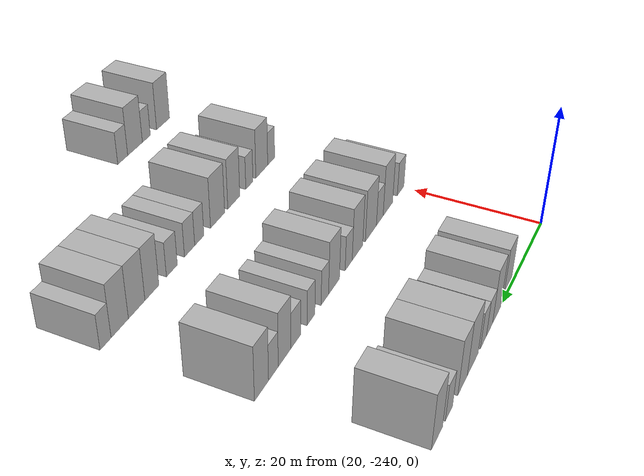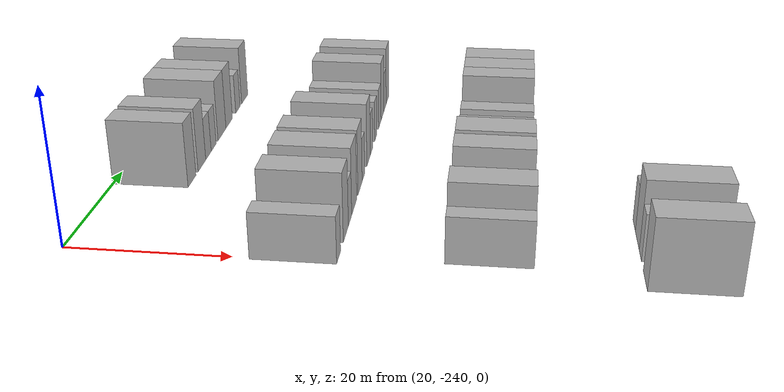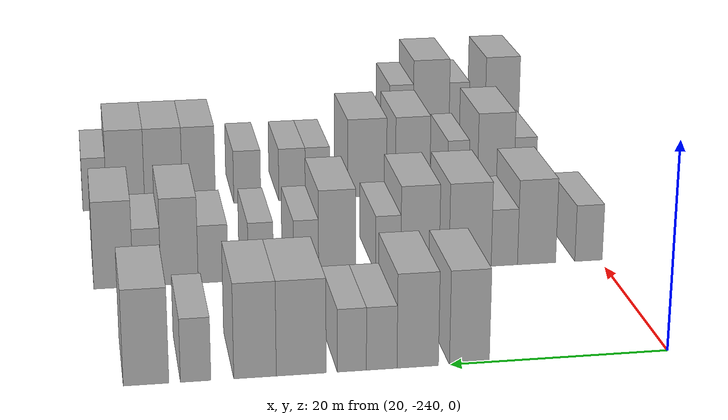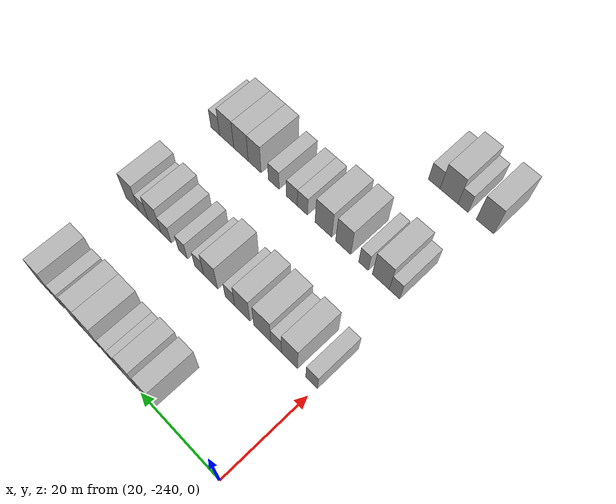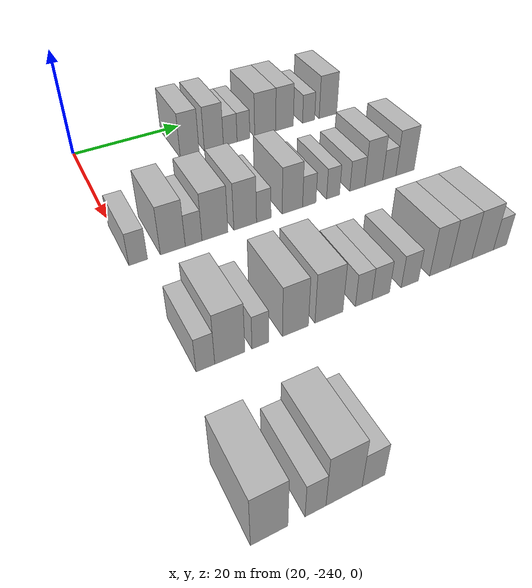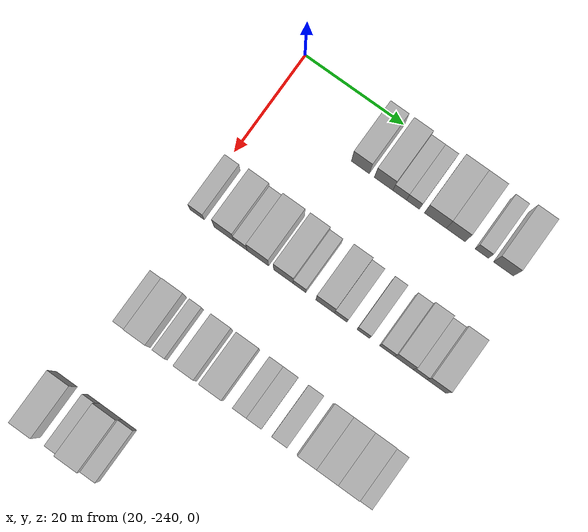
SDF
<sdf version="1.6">
 <world name="default">
  <model name="building_37">
   <static>1</static>
   <pose>25.0000 -221.7354 0 0.000000 0.000000 0.000000</pose>
   <link name="link">
    <pose>0 0 4.50 0 0 0</pose>
    <collision name="collision"><geometry><box><size>10.0000 3.6124 9.0000</size></box></geometry></collision>
    <visual name="visual">
     <cast_shadows>0</cast_shadows>
     <geometry><box><size>10.0000 3.6124 9.0000</size></box></geometry>
     <material>
      <script>
       <uri>model://HANNAS_wall/materials/scripts</uri>
       <uri>model://HANNAS_wall/materials/textures</uri>
       <name>vrc/HANNAS_wall</name>
      </script>
     </material>
    </visual>
   </link>
  </model>
  <model name="building_38">
   <static>1</static>
   <pose>25.0000 -217.0617 0 0.000000 0.000000 0.000000</pose>
   <link name="link">
    <pose>0 0 4.50 0 0 0</pose>
    <collision name="collision"><geometry><box><size>10.0000 3.7349 9.0000</size></box></geometry></collision>
    <visual name="visual">
     <cast_shadows>0</cast_shadows>
     <geometry><box><size>10.0000 3.7349 9.0000</size></box></geometry>
     <material>
      <script>
       <uri>model://HANNAS_wall/materials/scripts</uri>
       <uri>model://HANNAS_wall/materials/textures</uri>
       <name>vrc/HANNAS_wall</name>
      </script>
     </material>
    </visual>
   </link>
  </model>
  <model name="building_39">
   <static>1</static>
   <pose>25.0000 -213.8216 0 0.000000 0.000000 0.000000</pose>
   <link name="link">
    <pose>0 0 3.00 0 0 0</pose>
    <collision name="collision"><geometry><box><size>10.0000 2.7454 6.0000</size></box></geometry></collision>
    <visual name="visual">
     <cast_shadows>0</cast_shadows>
     <geometry><box><size>10.0000 2.7454 6.0000</size></box></geometry>
     <material>
      <script>
       <uri>model://HANNAS_wall/materials/scripts</uri>
       <uri>model://HANNAS_wall/materials/textures</uri>
       <name>vrc/HANNAS_wall</name>
      </script>
     </material>
    </visual>
   </link>
  </model>
  <model name="building_40">
   <static>1</static>
   <pose>25.0000 -211.1552 0 0.000000 0.000000 0.000000</pose>
   <link name="link">
    <pose>0 0 3.00 0 0 0</pose>
    <collision name="collision"><geometry><box><size>10.0000 2.5873 6.0000</size></box></geometry></collision>
    <visual name="visual">
     <cast_shadows>0</cast_shadows>
     <geometry><box><size>10.0000 2.5873 6.0000</size></box></geometry>
     <material>
      <script>
       <uri>model://HANNAS_wall/materials/scripts</uri>
       <uri>model://HANNAS_wall/materials/textures</uri>
       <name>vrc/HANNAS_wall</name>
      </script>
     </material>
    </visual>
   </link>
  </model>
  <model name="building_41">
   <static>1</static>
   <pose>25.0000 -206.6577 0 0.000000 0.000000 0.000000</pose>
   <link name="link">
    <pose>0 0 4.50 0 0 0</pose>
    <collision name="collision"><geometry><box><size>10.0000 4.4078 9.0000</size></box></geometry></collision>
    <visual name="visual">
     <cast_shadows>0</cast_shadows>
     <geometry><box><size>10.0000 4.4078 9.0000</size></box></geometry>
     <material>
      <script>
       <uri>model://HANNAS_wall/materials/scripts</uri>
       <uri>model://HANNAS_wall/materials/textures</uri>
       <name>vrc/HANNAS_wall</name>
      </script>
     </material>
    </visual>
   </link>
  </model>
  <model name="building_42">
   <static>1</static>
   <pose>25.0000 -202.5841 0 0.000000 0.000000 0.000000</pose>
   <link name="link">
    <pose>0 0 4.50 0 0 0</pose>
    <collision name="collision"><geometry><box><size>10.0000 3.7394 9.0000</size></box></geometry></collision>
    <visual name="visual">
     <cast_shadows>0</cast_shadows>
     <geometry><box><size>10.0000 3.7394 9.0000</size></box></geometry>
     <material>
      <script>
       <uri>model://HANNAS_wall/materials/scripts</uri>
       <uri>model://HANNAS_wall/materials/textures</uri>
       <name>vrc/HANNAS_wall</name>
      </script>
     </material>
    </visual>
   </link>
  </model>
  <model name="building_43">
   <static>1</static>
   <pose>25.0000 -197.3861 0 0.000000 0.000000 0.000000</pose>
   <link name="link">
    <pose>0 0 3.00 0 0 0</pose>
    <collision name="collision"><geometry><box><size>10.0000 2.6565 6.0000</size></box></geometry></collision>
    <visual name="visual">
     <cast_shadows>0</cast_shadows>
     <geometry><box><size>10.0000 2.6565 6.0000</size></box></geometry>
     <material>
      <script>
       <uri>model://HANNAS_wall/materials/scripts</uri>
       <uri>model://HANNAS_wall/materials/textures</uri>
       <name>vrc/HANNAS_wall</name>
      </script>
     </material>
    </visual>
   </link>
  </model>
  <model name="building_44">
   <static>1</static>
   <pose>25.0000 -193.0809 0 0.000000 0.000000 0.000000</pose>
   <link name="link">
    <pose>0 0 4.50 0 0 0</pose>
    <collision name="collision"><geometry><box><size>10.0000 3.9538 9.0000</size></box></geometry></collision>
    <visual name="visual">
     <cast_shadows>0</cast_shadows>
     <geometry><box><size>10.0000 3.9538 9.0000</size></box></geometry>
     <material>
      <script>
       <uri>model://HANNAS_wall/materials/scripts</uri>
       <uri>model://HANNAS_wall/materials/textures</uri>
       <name>vrc/HANNAS_wall</name>
      </script>
     </material>
    </visual>
   </link>
  </model>
  <model name="building_230">
   <static>1</static>
   <pose>47.0000 -238.8315 0 0.000000 0.000000 0.000000</pose>
   <link name="link">
    <pose>0 0 3.00 0 0 0</pose>
    <collision name="collision"><geometry><box><size>10.0000 2.8522 6.0000</size></box></geometry></collision>
    <visual name="visual">
     <cast_shadows>0</cast_shadows>
     <geometry><box><size>10.0000 2.8522 6.0000</size></box></geometry>
     <material>
      <script>
       <uri>model://HANNAS_wall/materials/scripts</uri>
       <uri>model://HANNAS_wall/materials/textures</uri>
       <name>vrc/HANNAS_wall</name>
      </script>
     </material>
    </visual>
   </link>
  </model>
  <model name="building_231">
   <static>1</static>
   <pose>47.0000 -233.4305 0 0.000000 0.000000 0.000000</pose>
   <link name="link">
    <pose>0 0 4.50 0 0 0</pose>
    <collision name="collision"><geometry><box><size>10.0000 3.9498 9.0000</size></box></geometry></collision>
    <visual name="visual">
     <cast_shadows>0</cast_shadows>
     <geometry><box><size>10.0000 3.9498 9.0000</size></box></geometry>
     <material>
      <script>
       <uri>model://HANNAS_wall/materials/scripts</uri>
       <uri>model://HANNAS_wall/materials/textures</uri>
       <name>vrc/HANNAS_wall</name>
      </script>
     </material>
    </visual>
   </link>
  </model>
  <model name="building_232">
   <static>1</static>
   <pose>47.0000 -230.0992 0 0.000000 0.000000 0.000000</pose>
   <link name="link">
    <pose>0 0 3.00 0 0 0</pose>
    <collision name="collision"><geometry><box><size>10.0000 2.7128 6.0000</size></box></geometry></collision>
    <visual name="visual">
     <cast_shadows>0</cast_shadows>
     <geometry><box><size>10.0000 2.7128 6.0000</size></box></geometry>
     <material>
      <script>
       <uri>model://HANNAS_wall/materials/scripts</uri>
       <uri>model://HANNAS_wall/materials/textures</uri>
       <name>vrc/HANNAS_wall</name>
      </script>
     </material>
    </visual>
   </link>
  </model>
  <model name="building_233">
   <static>1</static>
   <pose>47.0000 -226.5833 0 0.000000 0.000000 0.000000</pose>
   <link name="link">
    <pose>0 0 4.50 0 0 0</pose>
    <collision name="collision"><geometry><box><size>10.0000 4.3191 9.0000</size></box></geometry></collision>
    <visual name="visual">
     <cast_shadows>0</cast_shadows>
     <geometry><box><size>10.0000 4.3191 9.0000</size></box></geometry>
     <material>
      <script>
       <uri>model://HANNAS_wall/materials/scripts</uri>
       <uri>model://HANNAS_wall/materials/textures</uri>
       <name>vrc/HANNAS_wall</name>
      </script>
     </material>
    </visual>
   </link>
  </model>
  <model name="building_234">
   <static>1</static>
   <pose>47.0000 -221.4672 0 0.000000 0.000000 0.000000</pose>
   <link name="link">
    <pose>0 0 4.50 0 0 0</pose>
    <collision name="collision"><geometry><box><size>10.0000 3.9131 9.0000</size></box></geometry></collision>
    <visual name="visual">
     <cast_shadows>0</cast_shadows>
     <geometry><box><size>10.0000 3.9131 9.0000</size></box></geometry>
     <material>
      <script>
       <uri>model://HANNAS_wall/materials/scripts</uri>
       <uri>model://HANNAS_wall/materials/textures</uri>
       <name>vrc/HANNAS_wall</name>
      </script>
     </material>
    </visual>
   </link>
  </model>
  <model name="building_235">
   <static>1</static>
   <pose>47.0000 -218.2379 0 0.000000 0.000000 0.000000</pose>
   <link name="link">
    <pose>0 0 3.00 0 0 0</pose>
    <collision name="collision"><geometry><box><size>10.0000 2.5454 6.0000</size></box></geometry></collision>
    <visual name="visual">
     <cast_shadows>0</cast_shadows>
     <geometry><box><size>10.0000 2.5454 6.0000</size></box></geometry>
     <material>
      <script>
       <uri>model://HANNAS_wall/materials/scripts</uri>
       <uri>model://HANNAS_wall/materials/textures</uri>
       <name>vrc/HANNAS_wall</name>
      </script>
     </material>
    </visual>
   </link>
  </model>
  <model name="building_236">
   <static>1</static>
   <pose>47.0000 -213.1006 0 0.000000 0.000000 0.000000</pose>
   <link name="link">
    <pose>0 0 4.50 0 0 0</pose>
    <collision name="collision"><geometry><box><size>10.0000 3.7292 9.0000</size></box></geometry></collision>
    <visual name="visual">
     <cast_shadows>0</cast_shadows>
     <geometry><box><size>10.0000 3.7292 9.0000</size></box></geometry>
     <material>
      <script>
       <uri>model://HANNAS_wall/materials/scripts</uri>
       <uri>model://HANNAS_wall/materials/textures</uri>
       <name>vrc/HANNAS_wall</name>
      </script>
     </material>
    </visual>
   </link>
  </model>
  <model name="building_237">
   <static>1</static>
   <pose>47.0000 -209.9894 0 0.000000 0.000000 0.000000</pose>
   <link name="link">
    <pose>0 0 3.00 0 0 0</pose>
    <collision name="collision"><geometry><box><size>10.0000 2.4932 6.0000</size></box></geometry></collision>
    <visual name="visual">
     <cast_shadows>0</cast_shadows>
     <geometry><box><size>10.0000 2.4932 6.0000</size></box></geometry>
     <material>
      <script>
       <uri>model://HANNAS_wall/materials/scripts</uri>
       <uri>model://HANNAS_wall/materials/textures</uri>
       <name>vrc/HANNAS_wall</name>
      </script>
     </material>
    </visual>
   </link>
  </model>
  <model name="building_238">
   <static>1</static>
   <pose>47.0000 -205.4947 0 0.000000 0.000000 0.000000</pose>
   <link name="link">
    <pose>0 0 3.00 0 0 0</pose>
    <collision name="collision"><geometry><box><size>10.0000 2.4963 6.0000</size></box></geometry></collision>
    <visual name="visual">
     <cast_shadows>0</cast_shadows>
     <geometry><box><size>10.0000 2.4963 6.0000</size></box></geometry>
     <material>
      <script>
       <uri>model://HANNAS_wall/materials/scripts</uri>
       <uri>model://HANNAS_wall/materials/textures</uri>
       <name>vrc/HANNAS_wall</name>
      </script>
     </material>
    </visual>
   </link>
  </model>
  <model name="building_239">
   <static>1</static>
   <pose>47.0000 -200.7722 0 0.000000 0.000000 0.000000</pose>
   <link name="link">
    <pose>0 0 3.00 0 0 0</pose>
    <collision name="collision"><geometry><box><size>10.0000 2.9487 6.0000</size></box></geometry></collision>
    <visual name="visual">
     <cast_shadows>0</cast_shadows>
     <geometry><box><size>10.0000 2.9487 6.0000</size></box></geometry>
     <material>
      <script>
       <uri>model://HANNAS_wall/materials/scripts</uri>
       <uri>model://HANNAS_wall/materials/textures</uri>
       <name>vrc/HANNAS_wall</name>
      </script>
     </material>
    </visual>
   </link>
  </model>
  <model name="building_240">
   <static>1</static>
   <pose>47.0000 -197.4707 0 0.000000 0.000000 0.000000</pose>
   <link name="link">
    <pose>0 0 4.50 0 0 0</pose>
    <collision name="collision"><geometry><box><size>10.0000 3.6543 9.0000</size></box></geometry></collision>
    <visual name="visual">
     <cast_shadows>0</cast_shadows>
     <geometry><box><size>10.0000 3.6543 9.0000</size></box></geometry>
     <material>
      <script>
       <uri>model://HANNAS_wall/materials/scripts</uri>
       <uri>model://HANNAS_wall/materials/textures</uri>
       <name>vrc/HANNAS_wall</name>
      </script>
     </material>
    </visual>
   </link>
  </model>
  <model name="building_241">
   <static>1</static>
   <pose>47.0000 -194.2855 0 0.000000 0.000000 0.000000</pose>
   <link name="link">
    <pose>0 0 3.00 0 0 0</pose>
    <collision name="collision"><geometry><box><size>10.0000 2.7160 6.0000</size></box></geometry></collision>
    <visual name="visual">
     <cast_shadows>0</cast_shadows>
     <geometry><box><size>10.0000 2.7160 6.0000</size></box></geometry>
     <material>
      <script>
       <uri>model://HANNAS_wall/materials/scripts</uri>
       <uri>model://HANNAS_wall/materials/textures</uri>
       <name>vrc/HANNAS_wall</name>
      </script>
     </material>
    </visual>
   </link>
  </model>
  <model name="building_242">
   <static>1</static>
   <pose>47.0000 -191.0176 0 0.000000 0.000000 0.000000</pose>
   <link name="link">
    <pose>0 0 4.50 0 0 0</pose>
    <collision name="collision"><geometry><box><size>10.0000 3.8198 9.0000</size></box></geometry></collision>
    <visual name="visual">
     <cast_shadows>0</cast_shadows>
     <geometry><box><size>10.0000 3.8198 9.0000</size></box></geometry>
     <material>
      <script>
       <uri>model://HANNAS_wall/materials/scripts</uri>
       <uri>model://HANNAS_wall/materials/textures</uri>
       <name>vrc/HANNAS_wall</name>
      </script>
     </material>
    </visual>
   </link>
  </model>
  <model name="building_422">
   <static>1</static>
   <pose>69.0000 -237.6391 0 0.000000 0.000000 0.000000</pose>
   <link name="link">
    <pose>0 0 3.00 0 0 0</pose>
    <collision name="collision"><geometry><box><size>10.0000 2.5281 6.0000</size></box></geometry></collision>
    <visual name="visual">
     <cast_shadows>0</cast_shadows>
     <geometry><box><size>10.0000 2.5281 6.0000</size></box></geometry>
     <material>
      <script>
       <uri>model://HANNAS_wall/materials/scripts</uri>
       <uri>model://HANNAS_wall/materials/textures</uri>
       <name>vrc/HANNAS_wall</name>
      </script>
     </material>
    </visual>
   </link>
  </model>
  <model name="building_423">
   <static>1</static>
   <pose>69.0000 -234.2832 0 0.000000 0.000000 0.000000</pose>
   <link name="link">
    <pose>0 0 4.50 0 0 0</pose>
    <collision name="collision"><geometry><box><size>10.0000 4.1836 9.0000</size></box></geometry></collision>
    <visual name="visual">
     <cast_shadows>0</cast_shadows>
     <geometry><box><size>10.0000 4.1836 9.0000</size></box></geometry>
     <material>
      <script>
       <uri>model://HANNAS_wall/materials/scripts</uri>
       <uri>model://HANNAS_wall/materials/textures</uri>
       <name>vrc/HANNAS_wall</name>
      </script>
     </material>
    </visual>
   </link>
  </model>
  <model name="building_424">
   <static>1</static>
   <pose>69.0000 -229.9822 0 0.000000 0.000000 0.000000</pose>
   <link name="link">
    <pose>0 0 3.00 0 0 0</pose>
    <collision name="collision"><geometry><box><size>10.0000 2.4184 6.0000</size></box></geometry></collision>
    <visual name="visual">
     <cast_shadows>0</cast_shadows>
     <geometry><box><size>10.0000 2.4184 6.0000</size></box></geometry>
     <material>
      <script>
       <uri>model://HANNAS_wall/materials/scripts</uri>
       <uri>model://HANNAS_wall/materials/textures</uri>
       <name>vrc/HANNAS_wall</name>
      </script>
     </material>
    </visual>
   </link>
  </model>
  <model name="building_425">
   <static>1</static>
   <pose>69.0000 -224.8274 0 0.000000 0.000000 0.000000</pose>
   <link name="link">
    <pose>0 0 4.50 0 0 0</pose>
    <collision name="collision"><geometry><box><size>10.0000 3.8913 9.0000</size></box></geometry></collision>
    <visual name="visual">
     <cast_shadows>0</cast_shadows>
     <geometry><box><size>10.0000 3.8913 9.0000</size></box></geometry>
     <material>
      <script>
       <uri>model://HANNAS_wall/materials/scripts</uri>
       <uri>model://HANNAS_wall/materials/textures</uri>
       <name>vrc/HANNAS_wall</name>
      </script>
     </material>
    </visual>
   </link>
  </model>
  <model name="building_426">
   <static>1</static>
   <pose>69.0000 -219.6962 0 0.000000 0.000000 0.000000</pose>
   <link name="link">
    <pose>0 0 4.50 0 0 0</pose>
    <collision name="collision"><geometry><box><size>10.0000 4.3710 9.0000</size></box></geometry></collision>
    <visual name="visual">
     <cast_shadows>0</cast_shadows>
     <geometry><box><size>10.0000 4.3710 9.0000</size></box></geometry>
     <material>
      <script>
       <uri>model://HANNAS_wall/materials/scripts</uri>
       <uri>model://HANNAS_wall/materials/textures</uri>
       <name>vrc/HANNAS_wall</name>
      </script>
     </material>
    </visual>
   </link>
  </model>
  <model name="building_427">
   <static>1</static>
   <pose>69.0000 -214.1555 0 0.000000 0.000000 0.000000</pose>
   <link name="link">
    <pose>0 0 3.00 0 0 0</pose>
    <collision name="collision"><geometry><box><size>10.0000 2.7104 6.0000</size></box></geometry></collision>
    <visual name="visual">
     <cast_shadows>0</cast_shadows>
     <geometry><box><size>10.0000 2.7104 6.0000</size></box></geometry>
     <material>
      <script>
       <uri>model://HANNAS_wall/materials/scripts</uri>
       <uri>model://HANNAS_wall/materials/textures</uri>
       <name>vrc/HANNAS_wall</name>
      </script>
     </material>
    </visual>
   </link>
  </model>
  <model name="building_428">
   <static>1</static>
   <pose>69.0000 -211.3332 0 0.000000 0.000000 0.000000</pose>
   <link name="link">
    <pose>0 0 3.00 0 0 0</pose>
    <collision name="collision"><geometry><box><size>10.0000 2.9342 6.0000</size></box></geometry></collision>
    <visual name="visual">
     <cast_shadows>0</cast_shadows>
     <geometry><box><size>10.0000 2.9342 6.0000</size></box></geometry>
     <material>
      <script>
       <uri>model://HANNAS_wall/materials/scripts</uri>
       <uri>model://HANNAS_wall/materials/textures</uri>
       <name>vrc/HANNAS_wall</name>
      </script>
     </material>
    </visual>
   </link>
  </model>
  <model name="building_429">
   <static>1</static>
   <pose>69.0000 -206.3771 0 0.000000 0.000000 0.000000</pose>
   <link name="link">
    <pose>0 0 3.00 0 0 0</pose>
    <collision name="collision"><geometry><box><size>10.0000 2.9779 6.0000</size></box></geometry></collision>
    <visual name="visual">
     <cast_shadows>0</cast_shadows>
     <geometry><box><size>10.0000 2.9779 6.0000</size></box></geometry>
     <material>
      <script>
       <uri>model://HANNAS_wall/materials/scripts</uri>
       <uri>model://HANNAS_wall/materials/textures</uri>
       <name>vrc/HANNAS_wall</name>
      </script>
     </material>
    </visual>
   </link>
  </model>
  <model name="building_430">
   <static>1</static>
   <pose>69.0000 -201.0816 0 0.000000 0.000000 0.000000</pose>
   <link name="link">
    <pose>0 0 4.50 0 0 0</pose>
    <collision name="collision"><geometry><box><size>10.0000 3.6130 9.0000</size></box></geometry></collision>
    <visual name="visual">
     <cast_shadows>0</cast_shadows>
     <geometry><box><size>10.0000 3.6130 9.0000</size></box></geometry>
     <material>
      <script>
       <uri>model://HANNAS_wall/materials/scripts</uri>
       <uri>model://HANNAS_wall/materials/textures</uri>
       <name>vrc/HANNAS_wall</name>
      </script>
     </material>
    </visual>
   </link>
  </model>
  <model name="building_431">
   <static>1</static>
   <pose>69.0000 -197.2142 0 0.000000 0.000000 0.000000</pose>
   <link name="link">
    <pose>0 0 4.50 0 0 0</pose>
    <collision name="collision"><geometry><box><size>10.0000 4.1219 9.0000</size></box></geometry></collision>
    <visual name="visual">
     <cast_shadows>0</cast_shadows>
     <geometry><box><size>10.0000 4.1219 9.0000</size></box></geometry>
     <material>
      <script>
       <uri>model://HANNAS_wall/materials/scripts</uri>
       <uri>model://HANNAS_wall/materials/textures</uri>
       <name>vrc/HANNAS_wall</name>
      </script>
     </material>
    </visual>
   </link>
  </model>
  <model name="building_432">
   <static>1</static>
   <pose>69.0000 -193.0951 0 0.000000 0.000000 0.000000</pose>
   <link name="link">
    <pose>0 0 4.50 0 0 0</pose>
    <collision name="collision"><geometry><box><size>10.0000 4.1162 9.0000</size></box></geometry></collision>
    <visual name="visual">
     <cast_shadows>0</cast_shadows>
     <geometry><box><size>10.0000 4.1162 9.0000</size></box></geometry>
     <material>
      <script>
       <uri>model://HANNAS_wall/materials/scripts</uri>
       <uri>model://HANNAS_wall/materials/textures</uri>
       <name>vrc/HANNAS_wall</name>
      </script>
     </material>
    </visual>
   </link>
  </model>
  <model name="building_433">
   <static>1</static>
   <pose>69.0000 -189.7545 0 0.000000 0.000000 0.000000</pose>
   <link name="link">
    <pose>0 0 3.00 0 0 0</pose>
    <collision name="collision"><geometry><box><size>10.0000 2.5651 6.0000</size></box></geometry></collision>
    <visual name="visual">
     <cast_shadows>0</cast_shadows>
     <geometry><box><size>10.0000 2.5651 6.0000</size></box></geometry>
     <material>
      <script>
       <uri>model://HANNAS_wall/materials/scripts</uri>
       <uri>model://HANNAS_wall/materials/textures</uri>
       <name>vrc/HANNAS_wall</name>
      </script>
     </material>
    </visual>
   </link>
  </model>
  <model name="building_599">
   <static>1</static>
   <pose>91.0000 -240.1301 0 0.000000 0.000000 0.000000</pose>
   <link name="link">
    <pose>0 0 4.50 0 0 0</pose>
    <collision name="collision"><geometry><box><size>10.0000 4.2467 9.0000</size></box></geometry></collision>
    <visual name="visual">
     <cast_shadows>0</cast_shadows>
     <geometry><box><size>10.0000 4.2467 9.0000</size></box></geometry>
     <material>
      <script>
       <uri>model://HANNAS_wall/materials/scripts</uri>
       <uri>model://HANNAS_wall/materials/textures</uri>
       <name>vrc/HANNAS_wall</name>
      </script>
     </material>
    </visual>
   </link>
  </model>
  <model name="building_600">
   <static>1</static>
   <pose>91.0000 -234.7540 0 0.000000 0.000000 0.000000</pose>
   <link name="link">
    <pose>0 0 3.00 0 0 0</pose>
    <collision name="collision"><geometry><box><size>10.0000 2.5053 6.0000</size></box></geometry></collision>
    <visual name="visual">
     <cast_shadows>0</cast_shadows>
     <geometry><box><size>10.0000 2.5053 6.0000</size></box></geometry>
     <material>
      <script>
       <uri>model://HANNAS_wall/materials/scripts</uri>
       <uri>model://HANNAS_wall/materials/textures</uri>
       <name>vrc/HANNAS_wall</name>
      </script>
     </material>
    </visual>
   </link>
  </model>
  <model name="building_601">
   <static>1</static>
   <pose>91.0000 -231.2602 0 0.000000 0.000000 0.000000</pose>
   <link name="link">
    <pose>0 0 4.50 0 0 0</pose>
    <collision name="collision"><geometry><box><size>10.0000 4.4823 9.0000</size></box></geometry></collision>
    <visual name="visual">
     <cast_shadows>0</cast_shadows>
     <geometry><box><size>10.0000 4.4823 9.0000</size></box></geometry>
     <material>
      <script>
       <uri>model://HANNAS_wall/materials/scripts</uri>
       <uri>model://HANNAS_wall/materials/textures</uri>
       <name>vrc/HANNAS_wall</name>
      </script>
     </material>
    </visual>
   </link>
  </model>
  <model name="building_602">
   <static>1</static>
   <pose>91.0000 -227.5486 0 0.000000 0.000000 0.000000</pose>
   <link name="link">
    <pose>0 0 3.00 0 0 0</pose>
    <collision name="collision"><geometry><box><size>10.0000 2.9409 6.0000</size></box></geometry></collision>
    <visual name="visual">
     <cast_shadows>0</cast_shadows>
     <geometry><box><size>10.0000 2.9409 6.0000</size></box></geometry>
     <material>
      <script>
       <uri>model://HANNAS_wall/materials/scripts</uri>
       <uri>model://HANNAS_wall/materials/textures</uri>
       <name>vrc/HANNAS_wall</name>
      </script>
     </material>
    </visual>
   </link>
  </model>
 </world>
</sdf>
